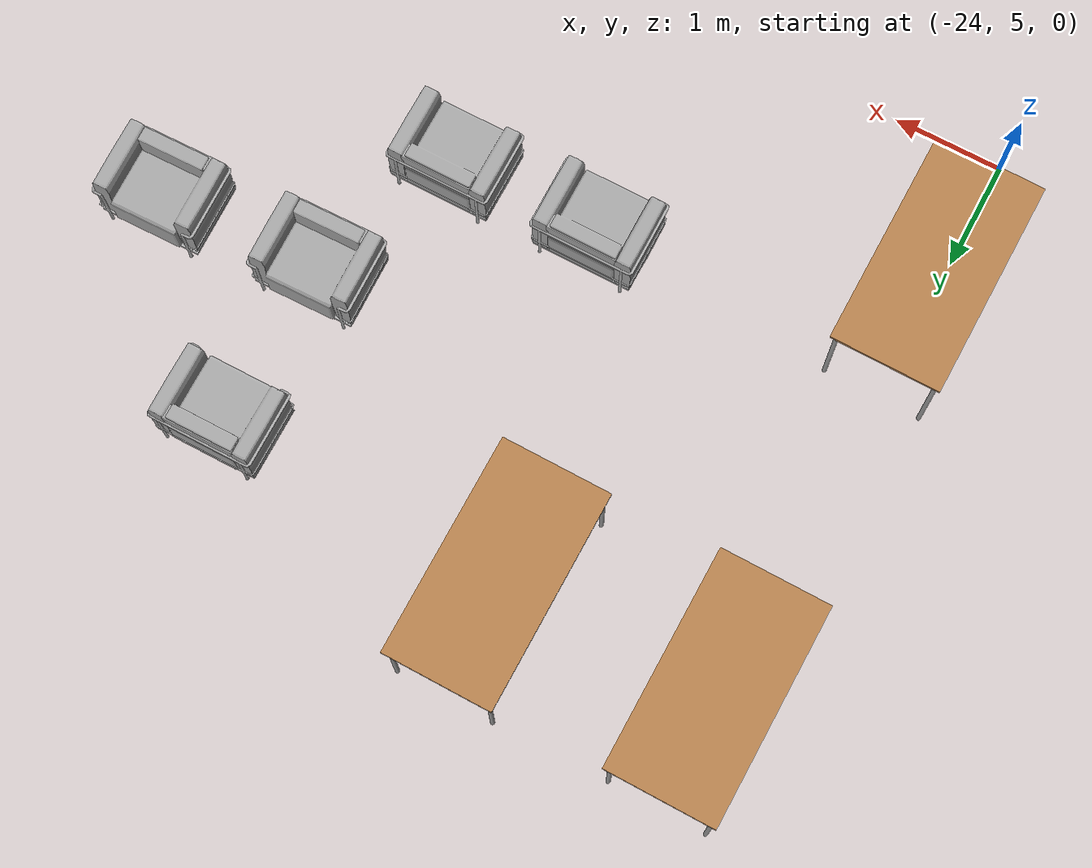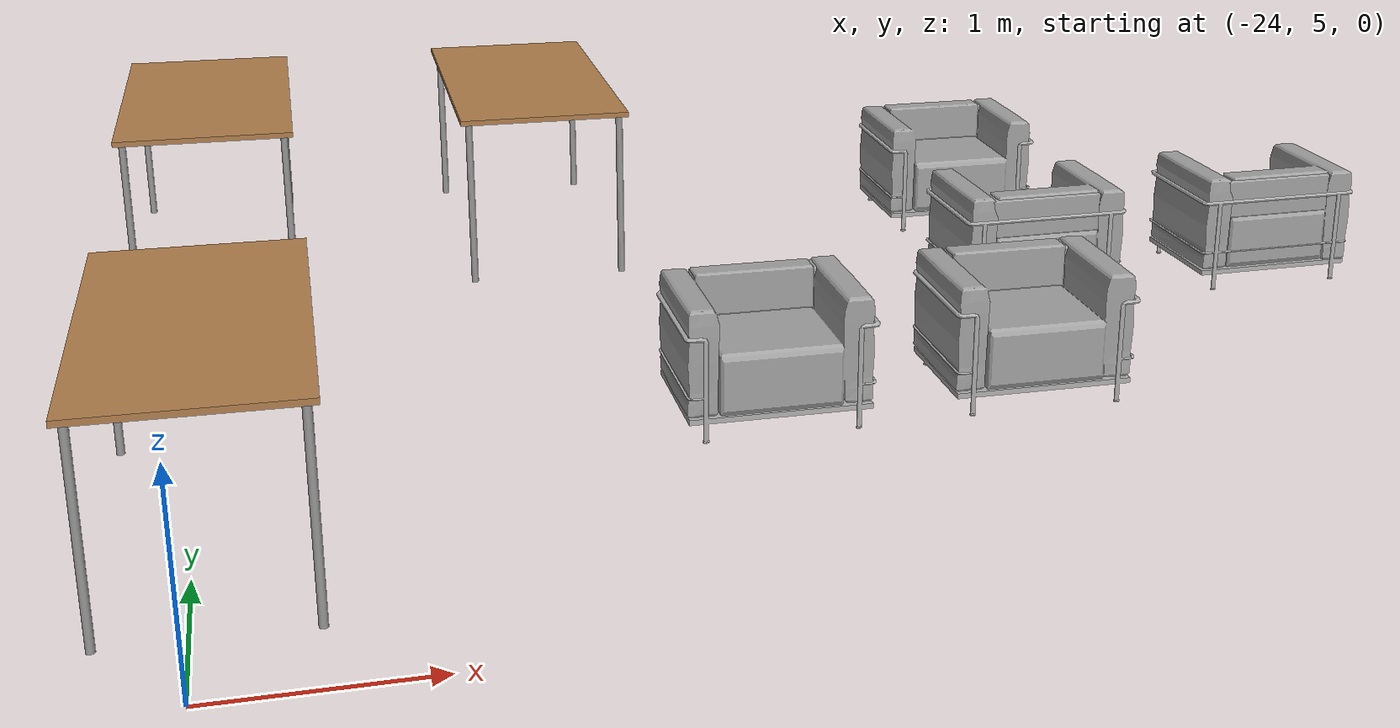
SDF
<sdf version="1.6">
 <model name="bibeg">
  <link name="link_clone_7">
   <pose>-23.902 10.4231 0 0 -0 1.56126</pose>
   <inertial>
    <mass>1</mass>
    <inertia><ixx>1</ixx><ixy>0</ixy><ixz>0</ixz><iyy>1</iyy><iyz>0</iyz><izz>1</izz></inertia>
   </inertial>
   <visual name="front_left_leg">
    <pose>0.95 0.45 0.5 0 -0 0</pose>
    <geometry><cylinder><radius>0.02</radius><length>1</length></cylinder></geometry>
    <material>
     <script><uri>file://media/materials/scripts/gazebo.material</uri><name>Gazebo/Grey</name></script>
     <shader type="vertex"><normal_map>__default__</normal_map></shader>
     <ambient>0.3 0.3 0.3 1</ambient>
     <diffuse>0.7 0.7 0.7 1</diffuse>
     <specular>0.01 0.01 0.01 1</specular>
     <emissive>0 0 0 1</emissive>
    </material>
   </visual>
   <visual name="visual1">
    <pose>0 0 1 0 -0 0</pose>
    <geometry><box><size>2 1 0.03</size></box></geometry>
    <material>
     <script><uri>file://media/materials/scripts/gazebo.material</uri><name>Gazebo/Wood</name></script>
     <shader type="vertex"><normal_map>__default__</normal_map></shader>
     <ambient>1 1 1 1</ambient>
     <diffuse>1 1 1 1</diffuse>
     <specular>0.2 0.2 0.2 1</specular>
     <emissive>0 0 0 1</emissive>
    </material>
   </visual>
   <visual name="front_right_leg">
    <pose>0.95 -0.45 0.5 0 -0 0</pose>
    <geometry><cylinder><radius>0.02</radius><length>1</length></cylinder></geometry>
    <material>
     <script><uri>file://media/materials/scripts/gazebo.material</uri><name>Gazebo/Grey</name></script>
     <shader type="vertex"><normal_map>__default__</normal_map></shader>
     <ambient>0.3 0.3 0.3 1</ambient>
     <diffuse>0.7 0.7 0.7 1</diffuse>
     <specular>0.01 0.01 0.01 1</specular>
     <emissive>0 0 0 1</emissive>
    </material>
   </visual>
   <visual name="back_right_leg">
    <pose>-0.95 -0.45 0.5 0 -0 0</pose>
    <geometry><cylinder><radius>0.02</radius><length>1</length></cylinder></geometry>
    <material>
     <script><uri>file://media/materials/scripts/gazebo.material</uri><name>Gazebo/Grey</name></script>
     <shader type="vertex"><normal_map>__default__</normal_map></shader>
     <ambient>0.3 0.3 0.3 1</ambient>
     <diffuse>0.7 0.7 0.7 1</diffuse>
     <specular>0.01 0.01 0.01 1</specular>
     <emissive>0 0 0 1</emissive>
    </material>
   </visual>
   <visual name="back_left_leg">
    <pose>-0.95 0.45 0.5 0 -0 0</pose>
    <geometry><cylinder><radius>0.02</radius><length>1</length></cylinder></geometry>
    <material>
     <script><uri>file://media/materials/scripts/gazebo.material</uri><name>Gazebo/Grey</name></script>
     <shader type="vertex"><normal_map>__default__</normal_map></shader>
     <ambient>0.3 0.3 0.3 1</ambient>
     <diffuse>0.7 0.7 0.7 1</diffuse>
     <specular>0.01 0.01 0.01 1</specular>
     <emissive>0 0 0 1</emissive>
    </material>
   </visual>
   <collision name="surface">
    <pose>0 0 1 0 -0 0</pose>
    <geometry><box><size>2 1 0.03</size></box></geometry>
    <surface>
     <friction>
      <ode><mu>1</mu><mu2>1</mu2><fdir1>0 0 0</fdir1><slip1>0</slip1><slip2>0</slip2></ode>
      <torsional>
       <coefficient>1</coefficient>
       <patch_radius>0</patch_radius>
       <surface_radius>0</surface_radius>
       <use_patch_radius>1</use_patch_radius>
       <ode><slip>0</slip></ode>
      </torsional>
     </friction>
     <bounce><restitution_coefficient>0</restitution_coefficient><threshold>1e+06</threshold></bounce>
     <contact>
      <collide_without_contact>0</collide_without_contact>
      <collide_without_contact_bitmask>1</collide_without_contact_bitmask>
      <collide_bitmask>1</collide_bitmask>
      <ode>
       <soft_cfm>0</soft_cfm>
       <soft_erp>0.2</soft_erp>
       <kp>1e+13</kp>
       <kd>1</kd>
       <max_vel>0.01</max_vel>
       <min_depth>0</min_depth>
      </ode>
      <bullet>
       <split_impulse>1</split_impulse>
       <split_impulse_penetration_threshold>-0.01</split_impulse_penetration_threshold>
       <soft_cfm>0</soft_cfm>
       <soft_erp>0.2</soft_erp>
       <kp>1e+13</kp>
       <kd>1</kd>
      </bullet>
     </contact>
    </surface>
   </collision>
   <collision name="front_left_leg_0">
    <pose>0.95 0.45 0.5 0 -0 0</pose>
    <geometry><cylinder><radius>0.02</radius><length>1</length></cylinder></geometry>
    <surface>
     <friction>
      <ode><mu>1</mu><mu2>1</mu2><fdir1>0 0 0</fdir1><slip1>0</slip1><slip2>0</slip2></ode>
      <torsional>
       <coefficient>1</coefficient>
       <patch_radius>0</patch_radius>
       <surface_radius>0</surface_radius>
       <use_patch_radius>1</use_patch_radius>
       <ode><slip>0</slip></ode>
      </torsional>
     </friction>
     <bounce><restitution_coefficient>0</restitution_coefficient><threshold>1e+06</threshold></bounce>
     <contact>
      <collide_without_contact>0</collide_without_contact>
      <collide_without_contact_bitmask>1</collide_without_contact_bitmask>
      <collide_bitmask>1</collide_bitmask>
      <ode>
       <soft_cfm>0</soft_cfm>
       <soft_erp>0.2</soft_erp>
       <kp>1e+13</kp>
       <kd>1</kd>
       <max_vel>0.01</max_vel>
       <min_depth>0</min_depth>
      </ode>
      <bullet>
       <split_impulse>1</split_impulse>
       <split_impulse_penetration_threshold>-0.01</split_impulse_penetration_threshold>
       <soft_cfm>0</soft_cfm>
       <soft_erp>0.2</soft_erp>
       <kp>1e+13</kp>
       <kd>1</kd>
      </bullet>
     </contact>
    </surface>
   </collision>
   <collision name="front_right_leg_0">
    <pose>0.95 -0.45 0.5 0 -0 0</pose>
    <geometry><cylinder><radius>0.02</radius><length>1</length></cylinder></geometry>
    <surface>
     <friction>
      <ode><mu>1</mu><mu2>1</mu2><fdir1>0 0 0</fdir1><slip1>0</slip1><slip2>0</slip2></ode>
      <torsional>
       <coefficient>1</coefficient>
       <patch_radius>0</patch_radius>
       <surface_radius>0</surface_radius>
       <use_patch_radius>1</use_patch_radius>
       <ode><slip>0</slip></ode>
      </torsional>
     </friction>
     <bounce><restitution_coefficient>0</restitution_coefficient><threshold>1e+06</threshold></bounce>
     <contact>
      <collide_without_contact>0</collide_without_contact>
      <collide_without_contact_bitmask>1</collide_without_contact_bitmask>
      <collide_bitmask>1</collide_bitmask>
      <ode>
       <soft_cfm>0</soft_cfm>
       <soft_erp>0.2</soft_erp>
       <kp>1e+13</kp>
       <kd>1</kd>
       <max_vel>0.01</max_vel>
       <min_depth>0</min_depth>
      </ode>
      <bullet>
       <split_impulse>1</split_impulse>
       <split_impulse_penetration_threshold>-0.01</split_impulse_penetration_threshold>
       <soft_cfm>0</soft_cfm>
       <soft_erp>0.2</soft_erp>
       <kp>1e+13</kp>
       <kd>1</kd>
      </bullet>
     </contact>
    </surface>
   </collision>
   <collision name="back_right_leg_0">
    <pose>-0.95 -0.45 0.5 0 -0 0</pose>
    <geometry><cylinder><radius>0.02</radius><length>1</length></cylinder></geometry>
    <surface>
     <friction>
      <ode><mu>1</mu><mu2>1</mu2><fdir1>0 0 0</fdir1><slip1>0</slip1><slip2>0</slip2></ode>
      <torsional>
       <coefficient>1</coefficient>
       <patch_radius>0</patch_radius>
       <surface_radius>0</surface_radius>
       <use_patch_radius>1</use_patch_radius>
       <ode><slip>0</slip></ode>
      </torsional>
     </friction>
     <bounce><restitution_coefficient>0</restitution_coefficient><threshold>1e+06</threshold></bounce>
     <contact>
      <collide_without_contact>0</collide_without_contact>
      <collide_without_contact_bitmask>1</collide_without_contact_bitmask>
      <collide_bitmask>1</collide_bitmask>
      <ode>
       <soft_cfm>0</soft_cfm>
       <soft_erp>0.2</soft_erp>
       <kp>1e+13</kp>
       <kd>1</kd>
       <max_vel>0.01</max_vel>
       <min_depth>0</min_depth>
      </ode>
      <bullet>
       <split_impulse>1</split_impulse>
       <split_impulse_penetration_threshold>-0.01</split_impulse_penetration_threshold>
       <soft_cfm>0</soft_cfm>
       <soft_erp>0.2</soft_erp>
       <kp>1e+13</kp>
       <kd>1</kd>
      </bullet>
     </contact>
    </surface>
   </collision>
   <collision name="back_left_leg_0">
    <pose>-0.68 0.38 0.5 0 -0 0</pose>
    <geometry><cylinder><radius>0.02</radius><length>1</length></cylinder></geometry>
    <surface>
     <friction>
      <ode><mu>1</mu><mu2>1</mu2><fdir1>0 0 0</fdir1><slip1>0</slip1><slip2>0</slip2></ode>
      <torsional>
       <coefficient>1</coefficient>
       <patch_radius>0</patch_radius>
       <surface_radius>0</surface_radius>
       <use_patch_radius>1</use_patch_radius>
       <ode><slip>0</slip></ode>
      </torsional>
     </friction>
     <bounce><restitution_coefficient>0</restitution_coefficient><threshold>1e+06</threshold></bounce>
     <contact>
      <collide_without_contact>0</collide_without_contact>
      <collide_without_contact_bitmask>1</collide_without_contact_bitmask>
      <collide_bitmask>1</collide_bitmask>
      <ode>
       <soft_cfm>0</soft_cfm>
       <soft_erp>0.2</soft_erp>
       <kp>1e+13</kp>
       <kd>1</kd>
       <max_vel>0.01</max_vel>
       <min_depth>0</min_depth>
      </ode>
      <bullet>
       <split_impulse>1</split_impulse>
       <split_impulse_penetration_threshold>-0.01</split_impulse_penetration_threshold>
       <soft_cfm>0</soft_cfm>
       <soft_erp>0.2</soft_erp>
       <kp>1e+13</kp>
       <kd>1</kd>
      </bullet>
     </contact>
    </surface>
   </collision>
  </link>
  <link name="link_clone_8">
   <pose>-21.9367 10.4314 0 0 -0 1.56126</pose>
   <inertial>
    <mass>1</mass>
    <inertia><ixx>1</ixx><ixy>0</ixy><ixz>0</ixz><iyy>1</iyy><iyz>0</iyz><izz>1</izz></inertia>
   </inertial>
   <visual name="front_left_leg">
    <pose>0.95 0.45 0.5 0 -0 0</pose>
    <geometry><cylinder><radius>0.02</radius><length>1</length></cylinder></geometry>
    <material>
     <script><uri>file://media/materials/scripts/gazebo.material</uri><name>Gazebo/Grey</name></script>
     <shader type="vertex"><normal_map>__default__</normal_map></shader>
     <ambient>0.3 0.3 0.3 1</ambient>
     <diffuse>0.7 0.7 0.7 1</diffuse>
     <specular>0.01 0.01 0.01 1</specular>
     <emissive>0 0 0 1</emissive>
    </material>
   </visual>
   <visual name="visual1">
    <pose>0 0 1 0 -0 0</pose>
    <geometry><box><size>2 1 0.03</size></box></geometry>
    <material>
     <script><uri>file://media/materials/scripts/gazebo.material</uri><name>Gazebo/Wood</name></script>
     <shader type="vertex"><normal_map>__default__</normal_map></shader>
     <ambient>1 1 1 1</ambient>
     <diffuse>1 1 1 1</diffuse>
     <specular>0.2 0.2 0.2 1</specular>
     <emissive>0 0 0 1</emissive>
    </material>
   </visual>
   <visual name="front_right_leg">
    <pose>0.95 -0.45 0.5 0 -0 0</pose>
    <geometry><cylinder><radius>0.02</radius><length>1</length></cylinder></geometry>
    <material>
     <script><uri>file://media/materials/scripts/gazebo.material</uri><name>Gazebo/Grey</name></script>
     <shader type="vertex"><normal_map>__default__</normal_map></shader>
     <ambient>0.3 0.3 0.3 1</ambient>
     <diffuse>0.7 0.7 0.7 1</diffuse>
     <specular>0.01 0.01 0.01 1</specular>
     <emissive>0 0 0 1</emissive>
    </material>
   </visual>
   <visual name="back_right_leg">
    <pose>-0.95 -0.45 0.5 0 -0 0</pose>
    <geometry><cylinder><radius>0.02</radius><length>1</length></cylinder></geometry>
    <material>
     <script><uri>file://media/materials/scripts/gazebo.material</uri><name>Gazebo/Grey</name></script>
     <shader type="vertex"><normal_map>__default__</normal_map></shader>
     <ambient>0.3 0.3 0.3 1</ambient>
     <diffuse>0.7 0.7 0.7 1</diffuse>
     <specular>0.01 0.01 0.01 1</specular>
     <emissive>0 0 0 1</emissive>
    </material>
   </visual>
   <visual name="back_left_leg">
    <pose>-0.95 0.45 0.5 0 -0 0</pose>
    <geometry><cylinder><radius>0.02</radius><length>1</length></cylinder></geometry>
    <material>
     <script><uri>file://media/materials/scripts/gazebo.material</uri><name>Gazebo/Grey</name></script>
     <shader type="vertex"><normal_map>__default__</normal_map></shader>
     <ambient>0.3 0.3 0.3 1</ambient>
     <diffuse>0.7 0.7 0.7 1</diffuse>
     <specular>0.01 0.01 0.01 1</specular>
     <emissive>0 0 0 1</emissive>
    </material>
   </visual>
   <collision name="surface">
    <pose>0 0 1 0 -0 0</pose>
    <geometry><box><size>2 1 0.03</size></box></geometry>
    <surface>
     <friction>
      <ode><mu>1</mu><mu2>1</mu2><fdir1>0 0 0</fdir1><slip1>0</slip1><slip2>0</slip2></ode>
      <torsional>
       <coefficient>1</coefficient>
       <patch_radius>0</patch_radius>
       <surface_radius>0</surface_radius>
       <use_patch_radius>1</use_patch_radius>
       <ode><slip>0</slip></ode>
      </torsional>
     </friction>
     <bounce><restitution_coefficient>0</restitution_coefficient><threshold>1e+06</threshold></bounce>
     <contact>
      <collide_without_contact>0</collide_without_contact>
      <collide_without_contact_bitmask>1</collide_without_contact_bitmask>
      <collide_bitmask>1</collide_bitmask>
      <ode>
       <soft_cfm>0</soft_cfm>
       <soft_erp>0.2</soft_erp>
       <kp>1e+13</kp>
       <kd>1</kd>
       <max_vel>0.01</max_vel>
       <min_depth>0</min_depth>
      </ode>
      <bullet>
       <split_impulse>1</split_impulse>
       <split_impulse_penetration_threshold>-0.01</split_impulse_penetration_threshold>
       <soft_cfm>0</soft_cfm>
       <soft_erp>0.2</soft_erp>
       <kp>1e+13</kp>
       <kd>1</kd>
      </bullet>
     </contact>
    </surface>
   </collision>
   <collision name="front_left_leg_0">
    <pose>0.95 0.45 0.5 0 -0 0</pose>
    <geometry><cylinder><radius>0.02</radius><length>1</length></cylinder></geometry>
    <surface>
     <friction>
      <ode><mu>1</mu><mu2>1</mu2><fdir1>0 0 0</fdir1><slip1>0</slip1><slip2>0</slip2></ode>
      <torsional>
       <coefficient>1</coefficient>
       <patch_radius>0</patch_radius>
       <surface_radius>0</surface_radius>
       <use_patch_radius>1</use_patch_radius>
       <ode><slip>0</slip></ode>
      </torsional>
     </friction>
     <bounce><restitution_coefficient>0</restitution_coefficient><threshold>1e+06</threshold></bounce>
     <contact>
      <collide_without_contact>0</collide_without_contact>
      <collide_without_contact_bitmask>1</collide_without_contact_bitmask>
      <collide_bitmask>1</collide_bitmask>
      <ode>
       <soft_cfm>0</soft_cfm>
       <soft_erp>0.2</soft_erp>
       <kp>1e+13</kp>
       <kd>1</kd>
       <max_vel>0.01</max_vel>
       <min_depth>0</min_depth>
      </ode>
      <bullet>
       <split_impulse>1</split_impulse>
       <split_impulse_penetration_threshold>-0.01</split_impulse_penetration_threshold>
       <soft_cfm>0</soft_cfm>
       <soft_erp>0.2</soft_erp>
       <kp>1e+13</kp>
       <kd>1</kd>
      </bullet>
     </contact>
    </surface>
   </collision>
   <collision name="front_right_leg_0">
    <pose>0.95 -0.45 0.5 0 -0 0</pose>
    <geometry><cylinder><radius>0.02</radius><length>1</length></cylinder></geometry>
    <surface>
     <friction>
      <ode><mu>1</mu><mu2>1</mu2><fdir1>0 0 0</fdir1><slip1>0</slip1><slip2>0</slip2></ode>
      <torsional>
       <coefficient>1</coefficient>
       <patch_radius>0</patch_radius>
       <surface_radius>0</surface_radius>
       <use_patch_radius>1</use_patch_radius>
       <ode><slip>0</slip></ode>
      </torsional>
     </friction>
     <bounce><restitution_coefficient>0</restitution_coefficient><threshold>1e+06</threshold></bounce>
     <contact>
      <collide_without_contact>0</collide_without_contact>
      <collide_without_contact_bitmask>1</collide_without_contact_bitmask>
      <collide_bitmask>1</collide_bitmask>
      <ode>
       <soft_cfm>0</soft_cfm>
       <soft_erp>0.2</soft_erp>
       <kp>1e+13</kp>
       <kd>1</kd>
       <max_vel>0.01</max_vel>
       <min_depth>0</min_depth>
      </ode>
      <bullet>
       <split_impulse>1</split_impulse>
       <split_impulse_penetration_threshold>-0.01</split_impulse_penetration_threshold>
       <soft_cfm>0</soft_cfm>
       <soft_erp>0.2</soft_erp>
       <kp>1e+13</kp>
       <kd>1</kd>
      </bullet>
     </contact>
    </surface>
   </collision>
   <collision name="back_right_leg_0">
    <pose>-0.95 -0.45 0.5 0 -0 0</pose>
    <geometry><cylinder><radius>0.02</radius><length>1</length></cylinder></geometry>
    <surface>
     <friction>
      <ode><mu>1</mu><mu2>1</mu2><fdir1>0 0 0</fdir1><slip1>0</slip1><slip2>0</slip2></ode>
      <torsional>
       <coefficient>1</coefficient>
       <patch_radius>0</patch_radius>
       <surface_radius>0</surface_radius>
       <use_patch_radius>1</use_patch_radius>
       <ode><slip>0</slip></ode>
      </torsional>
     </friction>
     <bounce><restitution_coefficient>0</restitution_coefficient><threshold>1e+06</threshold></bounce>
     <contact>
      <collide_without_contact>0</collide_without_contact>
      <collide_without_contact_bitmask>1</collide_without_contact_bitmask>
      <collide_bitmask>1</collide_bitmask>
      <ode>
       <soft_cfm>0</soft_cfm>
       <soft_erp>0.2</soft_erp>
       <kp>1e+13</kp>
       <kd>1</kd>
       <max_vel>0.01</max_vel>
       <min_depth>0</min_depth>
      </ode>
      <bullet>
       <split_impulse>1</split_impulse>
       <split_impulse_penetration_threshold>-0.01</split_impulse_penetration_threshold>
       <soft_cfm>0</soft_cfm>
       <soft_erp>0.2</soft_erp>
       <kp>1e+13</kp>
       <kd>1</kd>
      </bullet>
     </contact>
    </surface>
   </collision>
   <collision name="back_left_leg_0">
    <pose>-0.68 0.38 0.5 0 -0 0</pose>
    <geometry><cylinder><radius>0.02</radius><length>1</length></cylinder></geometry>
    <surface>
     <friction>
      <ode><mu>1</mu><mu2>1</mu2><fdir1>0 0 0</fdir1><slip1>0</slip1><slip2>0</slip2></ode>
      <torsional>
       <coefficient>1</coefficient>
       <patch_radius>0</patch_radius>
       <surface_radius>0</surface_radius>
       <use_patch_radius>1</use_patch_radius>
       <ode><slip>0</slip></ode>
      </torsional>
     </friction>
     <bounce><restitution_coefficient>0</restitution_coefficient><threshold>1e+06</threshold></bounce>
     <contact>
      <collide_without_contact>0</collide_without_contact>
      <collide_without_contact_bitmask>1</collide_without_contact_bitmask>
      <collide_bitmask>1</collide_bitmask>
      <ode>
       <soft_cfm>0</soft_cfm>
       <soft_erp>0.2</soft_erp>
       <kp>1e+13</kp>
       <kd>1</kd>
       <max_vel>0.01</max_vel>
       <min_depth>0</min_depth>
      </ode>
      <bullet>
       <split_impulse>1</split_impulse>
       <split_impulse_penetration_threshold>-0.01</split_impulse_penetration_threshold>
       <soft_cfm>0</soft_cfm>
       <soft_erp>0.2</soft_erp>
       <kp>1e+13</kp>
       <kd>1</kd>
      </bullet>
     </contact>
    </surface>
   </collision>
  </link>
  <link name="link_clone_9">
   <pose>-23.9149 6.43454 0 0 -0 1.56126</pose>
   <inertial>
    <mass>1</mass>
    <inertia><ixx>1</ixx><ixy>0</ixy><ixz>0</ixz><iyy>1</iyy><iyz>0</iyz><izz>1</izz></inertia>
   </inertial>
   <visual name="visual1">
    <pose>0 0 1 0 -0 0</pose>
    <geometry><box><size>2 1 0.03</size></box></geometry>
    <material>
     <script><uri>file://media/materials/scripts/gazebo.material</uri><name>Gazebo/Wood</name></script>
     <shader type="vertex"><normal_map>__default__</normal_map></shader>
     <ambient>1 1 1 1</ambient>
     <diffuse>1 1 1 1</diffuse>
     <specular>0.2 0.2 0.2 1</specular>
     <emissive>0 0 0 1</emissive>
    </material>
   </visual>
   <visual name="front_left_leg">
    <pose>0.95 0.45 0.5 0 -0 0</pose>
    <geometry><cylinder><radius>0.02</radius><length>1</length></cylinder></geometry>
    <material>
     <script><uri>file://media/materials/scripts/gazebo.material</uri><name>Gazebo/Grey</name></script>
     <shader type="vertex"><normal_map>__default__</normal_map></shader>
     <ambient>0.3 0.3 0.3 1</ambient>
     <diffuse>0.7 0.7 0.7 1</diffuse>
     <specular>0.01 0.01 0.01 1</specular>
     <emissive>0 0 0 1</emissive>
    </material>
   </visual>
   <visual name="front_right_leg">
    <pose>0.95 -0.45 0.5 0 -0 0</pose>
    <geometry><cylinder><radius>0.02</radius><length>1</length></cylinder></geometry>
    <material>
     <script><uri>file://media/materials/scripts/gazebo.material</uri><name>Gazebo/Grey</name></script>
     <shader type="vertex"><normal_map>__default__</normal_map></shader>
     <ambient>0.3 0.3 0.3 1</ambient>
     <diffuse>0.7 0.7 0.7 1</diffuse>
     <specular>0.01 0.01 0.01 1</specular>
     <emissive>0 0 0 1</emissive>
    </material>
   </visual>
   <visual name="back_right_leg">
    <pose>-0.95 -0.45 0.5 0 -0 0</pose>
    <geometry><cylinder><radius>0.02</radius><length>1</length></cylinder></geometry>
    <material>
     <script><uri>file://media/materials/scripts/gazebo.material</uri><name>Gazebo/Grey</name></script>
     <shader type="vertex"><normal_map>__default__</normal_map></shader>
     <ambient>0.3 0.3 0.3 1</ambient>
     <diffuse>0.7 0.7 0.7 1</diffuse>
     <specular>0.01 0.01 0.01 1</specular>
     <emissive>0 0 0 1</emissive>
    </material>
   </visual>
   <visual name="back_left_leg">
    <pose>-0.95 0.45 0.5 0 -0 0</pose>
    <geometry><cylinder><radius>0.02</radius><length>1</length></cylinder></geometry>
    <material>
     <script><uri>file://media/materials/scripts/gazebo.material</uri><name>Gazebo/Grey</name></script>
     <shader type="vertex"><normal_map>__default__</normal_map></shader>
     <ambient>0.3 0.3 0.3 1</ambient>
     <diffuse>0.7 0.7 0.7 1</diffuse>
     <specular>0.01 0.01 0.01 1</specular>
     <emissive>0 0 0 1</emissive>
    </material>
   </visual>
   <collision name="surface">
    <pose>0 0 1 0 -0 0</pose>
    <geometry><box><size>2 1 0.03</size></box></geometry>
    <surface>
     <friction>
      <ode><mu>1</mu><mu2>1</mu2><fdir1>0 0 0</fdir1><slip1>0</slip1><slip2>0</slip2></ode>
      <torsional>
       <coefficient>1</coefficient>
       <patch_radius>0</patch_radius>
       <surface_radius>0</surface_radius>
       <use_patch_radius>1</use_patch_radius>
       <ode><slip>0</slip></ode>
      </torsional>
     </friction>
     <bounce><restitution_coefficient>0</restitution_coefficient><threshold>1e+06</threshold></bounce>
     <contact>
      <collide_without_contact>0</collide_without_contact>
      <collide_without_contact_bitmask>1</collide_without_contact_bitmask>
      <collide_bitmask>1</collide_bitmask>
      <ode>
       <soft_cfm>0</soft_cfm>
       <soft_erp>0.2</soft_erp>
       <kp>1e+13</kp>
       <kd>1</kd>
       <max_vel>0.01</max_vel>
       <min_depth>0</min_depth>
      </ode>
      <bullet>
       <split_impulse>1</split_impulse>
       <split_impulse_penetration_threshold>-0.01</split_impulse_penetration_threshold>
       <soft_cfm>0</soft_cfm>
       <soft_erp>0.2</soft_erp>
       <kp>1e+13</kp>
       <kd>1</kd>
      </bullet>
     </contact>
    </surface>
   </collision>
   <collision name="front_left_leg_0">
    <pose>0.95 0.45 0.5 0 -0 0</pose>
    <geometry><cylinder><radius>0.02</radius><length>1</length></cylinder></geometry>
    <surface>
     <friction>
      <ode><mu>1</mu><mu2>1</mu2><fdir1>0 0 0</fdir1><slip1>0</slip1><slip2>0</slip2></ode>
      <torsional>
       <coefficient>1</coefficient>
       <patch_radius>0</patch_radius>
       <surface_radius>0</surface_radius>
       <use_patch_radius>1</use_patch_radius>
       <ode><slip>0</slip></ode>
      </torsional>
     </friction>
     <bounce><restitution_coefficient>0</restitution_coefficient><threshold>1e+06</threshold></bounce>
     <contact>
      <collide_without_contact>0</collide_without_contact>
      <collide_without_contact_bitmask>1</collide_without_contact_bitmask>
      <collide_bitmask>1</collide_bitmask>
      <ode>
       <soft_cfm>0</soft_cfm>
       <soft_erp>0.2</soft_erp>
       <kp>1e+13</kp>
       <kd>1</kd>
       <max_vel>0.01</max_vel>
       <min_depth>0</min_depth>
      </ode>
      <bullet>
       <split_impulse>1</split_impulse>
       <split_impulse_penetration_threshold>-0.01</split_impulse_penetration_threshold>
       <soft_cfm>0</soft_cfm>
       <soft_erp>0.2</soft_erp>
       <kp>1e+13</kp>
       <kd>1</kd>
      </bullet>
     </contact>
    </surface>
   </collision>
   <collision name="front_right_leg_0">
    <pose>0.95 -0.45 0.5 0 -0 0</pose>
    <geometry><cylinder><radius>0.02</radius><length>1</length></cylinder></geometry>
    <surface>
     <friction>
      <ode><mu>1</mu><mu2>1</mu2><fdir1>0 0 0</fdir1><slip1>0</slip1><slip2>0</slip2></ode>
      <torsional>
       <coefficient>1</coefficient>
       <patch_radius>0</patch_radius>
       <surface_radius>0</surface_radius>
       <use_patch_radius>1</use_patch_radius>
       <ode><slip>0</slip></ode>
      </torsional>
     </friction>
     <bounce><restitution_coefficient>0</restitution_coefficient><threshold>1e+06</threshold></bounce>
     <contact>
      <collide_without_contact>0</collide_without_contact>
      <collide_without_contact_bitmask>1</collide_without_contact_bitmask>
      <collide_bitmask>1</collide_bitmask>
      <ode>
       <soft_cfm>0</soft_cfm>
       <soft_erp>0.2</soft_erp>
       <kp>1e+13</kp>
       <kd>1</kd>
       <max_vel>0.01</max_vel>
       <min_depth>0</min_depth>
      </ode>
      <bullet>
       <split_impulse>1</split_impulse>
       <split_impulse_penetration_threshold>-0.01</split_impulse_penetration_threshold>
       <soft_cfm>0</soft_cfm>
       <soft_erp>0.2</soft_erp>
       <kp>1e+13</kp>
       <kd>1</kd>
      </bullet>
     </contact>
    </surface>
   </collision>
   <collision name="back_right_leg_0">
    <pose>-0.95 -0.45 0.5 0 -0 0</pose>
    <geometry><cylinder><radius>0.02</radius><length>1</length></cylinder></geometry>
    <surface>
     <friction>
      <ode><mu>1</mu><mu2>1</mu2><fdir1>0 0 0</fdir1><slip1>0</slip1><slip2>0</slip2></ode>
      <torsional>
       <coefficient>1</coefficient>
       <patch_radius>0</patch_radius>
       <surface_radius>0</surface_radius>
       <use_patch_radius>1</use_patch_radius>
       <ode><slip>0</slip></ode>
      </torsional>
     </friction>
     <bounce><restitution_coefficient>0</restitution_coefficient><threshold>1e+06</threshold></bounce>
     <contact>
      <collide_without_contact>0</collide_without_contact>
      <collide_without_contact_bitmask>1</collide_without_contact_bitmask>
      <collide_bitmask>1</collide_bitmask>
      <ode>
       <soft_cfm>0</soft_cfm>
       <soft_erp>0.2</soft_erp>
       <kp>1e+13</kp>
       <kd>1</kd>
       <max_vel>0.01</max_vel>
       <min_depth>0</min_depth>
      </ode>
      <bullet>
       <split_impulse>1</split_impulse>
       <split_impulse_penetration_threshold>-0.01</split_impulse_penetration_threshold>
       <soft_cfm>0</soft_cfm>
       <soft_erp>0.2</soft_erp>
       <kp>1e+13</kp>
       <kd>1</kd>
      </bullet>
     </contact>
    </surface>
   </collision>
   <collision name="back_left_leg_0">
    <pose>-0.68 0.38 0.5 0 -0 0</pose>
    <geometry><cylinder><radius>0.02</radius><length>1</length></cylinder></geometry>
    <surface>
     <friction>
      <ode><mu>1</mu><mu2>1</mu2><fdir1>0 0 0</fdir1><slip1>0</slip1><slip2>0</slip2></ode>
      <torsional>
       <coefficient>1</coefficient>
       <patch_radius>0</patch_radius>
       <surface_radius>0</surface_radius>
       <use_patch_radius>1</use_patch_radius>
       <ode><slip>0</slip></ode>
      </torsional>
     </friction>
     <bounce><restitution_coefficient>0</restitution_coefficient><threshold>1e+06</threshold></bounce>
     <contact>
      <collide_without_contact>0</collide_without_contact>
      <collide_without_contact_bitmask>1</collide_without_contact_bitmask>
      <collide_bitmask>1</collide_bitmask>
      <ode>
       <soft_cfm>0</soft_cfm>
       <soft_erp>0.2</soft_erp>
       <kp>1e+13</kp>
       <kd>1</kd>
       <max_vel>0.01</max_vel>
       <min_depth>0</min_depth>
      </ode>
      <bullet>
       <split_impulse>1</split_impulse>
       <split_impulse_penetration_threshold>-0.01</split_impulse_penetration_threshold>
       <soft_cfm>0</soft_cfm>
       <soft_erp>0.2</soft_erp>
       <kp>1e+13</kp>
       <kd>1</kd>
      </bullet>
     </contact>
    </surface>
   </collision>
  </link>
  <model name="chair_set_1">
   <link name="link_16">
    <pose>0.07217 0.114259 -0.032065 0 -0 1.57</pose>
    <visual name="visual">
     <geometry><mesh><uri>model://chair_set_1/meshes/chair_frame.dae</uri><scale>1 1 1</scale></mesh></geometry>
     <material>
      <lighting>1</lighting>
      <ambient>0.3 0.3 0.3 1</ambient>
      <diffuse>0.7 0.7 0.7 1</diffuse>
      <specular>0.01 0.01 0.01 1</specular>
      <emissive>0 0 0 1</emissive>
      <shader type="vertex"><normal_map>__default__</normal_map></shader>
     </material>
    </visual>
    <collision name="collision">
     <geometry><mesh><uri>model://chair_set_1/meshes/chair_frame.dae</uri><scale>1 1 1</scale></mesh></geometry>
    </collision>
   </link>
   <link name="link_17">
    <pose>0.069192 0.1237 -0.032065 0 -0 1.57</pose>
    <visual name="visual">
     <geometry><mesh><uri>model://chair_set_1/meshes/chair_cushions.dae</uri><scale>1 1 1</scale></mesh></geometry>
     <material>
      <script>
       <uri>model://chair_set_1/materials/scripts</uri>
       <uri>model://chair_set_1/materials/textures</uri>
       <name>chair_set_1</name>
      </script>
     </material>
    </visual>
    <collision name="collision">
     <geometry><mesh><uri>model://chair_set_1/meshes/chair_cushions.dae</uri><scale>1 1 1</scale></mesh></geometry>
    </collision>
   </link>
   <link name="link_18">
    <pose>0.606963 -0.367766 -0.032065 0 -0 0</pose>
    <visual name="visual">
     <geometry>
      <mesh><uri>model://chair_set_1/meshes/sofa_cushions_back.dae</uri><scale>1 1 1</scale></mesh>
     </geometry>
     <material>
      <script>
       <uri>model://chair_set_1/materials/scripts</uri>
       <uri>model://chair_set_1/materials/textures</uri>
       <name>chair_set_1</name>
      </script>
     </material>
    </visual>
    <collision name="collision">
     <geometry>
      <mesh><uri>model://chair_set_1/meshes/sofa_cushions_back.dae</uri><scale>1 1 1</scale></mesh>
     </geometry>
    </collision>
   </link>
   <static>1</static>
   <pose>-19.1557 10.1824 0 0 -0 0</pose>
  </model>
  <model name="chair_set_1_1">
   <link name="link_16">
    <pose>0.07217 0.114259 -0.032065 0 -0 1.57</pose>
    <visual name="visual">
     <geometry><mesh><uri>model://chair_set_1/meshes/chair_frame.dae</uri><scale>1 1 1</scale></mesh></geometry>
     <material>
      <lighting>1</lighting>
      <ambient>0.3 0.3 0.3 1</ambient>
      <diffuse>0.7 0.7 0.7 1</diffuse>
      <specular>0.01 0.01 0.01 1</specular>
      <emissive>0 0 0 1</emissive>
      <shader type="vertex"><normal_map>__default__</normal_map></shader>
     </material>
    </visual>
    <collision name="collision">
     <geometry><mesh><uri>model://chair_set_1/meshes/chair_frame.dae</uri><scale>1 1 1</scale></mesh></geometry>
    </collision>
   </link>
   <link name="link_17">
    <pose>0.069192 0.1237 -0.032065 0 -0 1.57</pose>
    <visual name="visual">
     <geometry><mesh><uri>model://chair_set_1/meshes/chair_cushions.dae</uri><scale>1 1 1</scale></mesh></geometry>
     <material>
      <script>
       <uri>model://chair_set_1/materials/scripts</uri>
       <uri>model://chair_set_1/materials/textures</uri>
       <name>chair_set_1</name>
      </script>
     </material>
    </visual>
    <collision name="collision">
     <geometry><mesh><uri>model://chair_set_1/meshes/chair_cushions.dae</uri><scale>1 1 1</scale></mesh></geometry>
    </collision>
   </link>
   <link name="link_18">
    <pose>0.606963 -0.367766 -0.032065 0 -0 0</pose>
    <visual name="visual">
     <geometry>
      <mesh><uri>model://chair_set_1/meshes/sofa_cushions_back.dae</uri><scale>1 1 1</scale></mesh>
     </geometry>
     <material>
      <script>
       <uri>model://chair_set_1/materials/scripts</uri>
       <uri>model://chair_set_1/materials/textures</uri>
       <name>chair_set_1</name>
      </script>
     </material>
    </visual>
    <collision name="collision">
     <geometry>
      <mesh><uri>model://chair_set_1/meshes/sofa_cushions_back.dae</uri><scale>1 1 1</scale></mesh>
     </geometry>
    </collision>
   </link>
   <static>1</static>
   <pose>-21.1749 7.22132 0 0 -0 0</pose>
  </model>
  <model name="chair_set_1_2">
   <link name="link_16">
    <pose>0.07217 0.114259 -0.032065 0 -0 1.57</pose>
    <visual name="visual">
     <geometry><mesh><uri>model://chair_set_1/meshes/chair_frame.dae</uri><scale>1 1 1</scale></mesh></geometry>
     <material>
      <lighting>1</lighting>
      <ambient>0.3 0.3 0.3 1</ambient>
      <diffuse>0.7 0.7 0.7 1</diffuse>
      <specular>0.01 0.01 0.01 1</specular>
      <emissive>0 0 0 1</emissive>
      <shader type="vertex"><normal_map>__default__</normal_map></shader>
     </material>
    </visual>
    <collision name="collision">
     <geometry><mesh><uri>model://chair_set_1/meshes/chair_frame.dae</uri><scale>1 1 1</scale></mesh></geometry>
    </collision>
   </link>
   <link name="link_17">
    <pose>0.069192 0.1237 -0.032065 0 -0 1.57</pose>
    <visual name="visual">
     <geometry><mesh><uri>model://chair_set_1/meshes/chair_cushions.dae</uri><scale>1 1 1</scale></mesh></geometry>
     <material>
      <script>
       <uri>model://chair_set_1/materials/scripts</uri>
       <uri>model://chair_set_1/materials/textures</uri>
       <name>chair_set_1</name>
      </script>
     </material>
    </visual>
    <collision name="collision">
     <geometry><mesh><uri>model://chair_set_1/meshes/chair_cushions.dae</uri><scale>1 1 1</scale></mesh></geometry>
    </collision>
   </link>
   <link name="link_18">
    <pose>0.606963 -0.367766 -0.032065 0 -0 0</pose>
    <visual name="visual">
     <geometry>
      <mesh><uri>model://chair_set_1/meshes/sofa_cushions_back.dae</uri><scale>1 1 1</scale></mesh>
     </geometry>
     <material>
      <script>
       <uri>model://chair_set_1/materials/scripts</uri>
       <uri>model://chair_set_1/materials/textures</uri>
       <name>chair_set_1</name>
      </script>
     </material>
    </visual>
    <collision name="collision">
     <geometry>
      <mesh><uri>model://chair_set_1/meshes/sofa_cushions_back.dae</uri><scale>1 1 1</scale></mesh>
     </geometry>
    </collision>
   </link>
   <static>1</static>
   <pose>-19.784 7.23452 0 0 -0 0</pose>
  </model>
  <model name="chair_set_1_3_clone">
   <link name="link_16">
    <pose>0.07217 0.114259 -0.032065 0 -0 1.57</pose>
    <visual name="visual">
     <geometry><mesh><uri>model://chair_set_1/meshes/chair_frame.dae</uri><scale>1 1 1</scale></mesh></geometry>
     <material>
      <lighting>1</lighting>
      <ambient>0.3 0.3 0.3 1</ambient>
      <diffuse>0.7 0.7 0.7 1</diffuse>
      <specular>0.01 0.01 0.01 1</specular>
      <emissive>0 0 0 1</emissive>
      <shader type="vertex"><normal_map>__default__</normal_map></shader>
     </material>
    </visual>
    <collision name="collision">
     <geometry><mesh><uri>model://chair_set_1/meshes/chair_frame.dae</uri><scale>1 1 1</scale></mesh></geometry>
    </collision>
   </link>
   <link name="link_17">
    <pose>0.069192 0.1237 -0.032065 0 -0 1.57</pose>
    <visual name="visual">
     <geometry><mesh><uri>model://chair_set_1/meshes/chair_cushions.dae</uri><scale>1 1 1</scale></mesh></geometry>
     <material>
      <script>
       <uri>model://chair_set_1/materials/scripts</uri>
       <uri>model://chair_set_1/materials/textures</uri>
       <name>chair_set_1</name>
      </script>
     </material>
    </visual>
    <collision name="collision">
     <geometry><mesh><uri>model://chair_set_1/meshes/chair_cushions.dae</uri><scale>1 1 1</scale></mesh></geometry>
    </collision>
   </link>
   <link name="link_18">
    <pose>0.606963 -0.367766 -0.032065 0 -0 0</pose>
    <visual name="visual">
     <geometry>
      <mesh><uri>model://chair_set_1/meshes/sofa_cushions_back.dae</uri><scale>1 1 1</scale></mesh>
     </geometry>
     <material>
      <script>
       <uri>model://chair_set_1/materials/scripts</uri>
       <uri>model://chair_set_1/materials/textures</uri>
       <name>chair_set_1</name>
      </script>
     </material>
    </visual>
    <collision name="collision">
     <geometry>
      <mesh><uri>model://chair_set_1/meshes/sofa_cushions_back.dae</uri><scale>1 1 1</scale></mesh>
     </geometry>
    </collision>
   </link>
   <static>1</static>
   <pose>-19.2224 8.62796 0 0 0 -3.12094</pose>
  </model>
  <model name="chair_set_1_3_clone_0">
   <link name="link_16">
    <pose>0.07217 0.114259 -0.032065 0 -0 1.57</pose>
    <visual name="visual">
     <geometry><mesh><uri>model://chair_set_1/meshes/chair_frame.dae</uri><scale>1 1 1</scale></mesh></geometry>
     <material>
      <lighting>1</lighting>
      <ambient>0.3 0.3 0.3 1</ambient>
      <diffuse>0.7 0.7 0.7 1</diffuse>
      <specular>0.01 0.01 0.01 1</specular>
      <emissive>0 0 0 1</emissive>
      <shader type="vertex"><normal_map>__default__</normal_map></shader>
     </material>
    </visual>
    <collision name="collision">
     <geometry><mesh><uri>model://chair_set_1/meshes/chair_frame.dae</uri><scale>1 1 1</scale></mesh></geometry>
    </collision>
   </link>
   <link name="link_17">
    <pose>0.069192 0.1237 -0.032065 0 -0 1.57</pose>
    <visual name="visual">
     <geometry><mesh><uri>model://chair_set_1/meshes/chair_cushions.dae</uri><scale>1 1 1</scale></mesh></geometry>
     <material>
      <script>
       <uri>model://chair_set_1/materials/scripts</uri>
       <uri>model://chair_set_1/materials/textures</uri>
       <name>chair_set_1</name>
      </script>
     </material>
    </visual>
    <collision name="collision">
     <geometry><mesh><uri>model://chair_set_1/meshes/chair_cushions.dae</uri><scale>1 1 1</scale></mesh></geometry>
    </collision>
   </link>
   <link name="link_18">
    <pose>0.606963 -0.367766 -0.032065 0 -0 0</pose>
    <visual name="visual">
     <geometry>
      <mesh><uri>model://chair_set_1/meshes/sofa_cushions_back.dae</uri><scale>1 1 1</scale></mesh>
     </geometry>
     <material>
      <script>
       <uri>model://chair_set_1/materials/scripts</uri>
       <uri>model://chair_set_1/materials/textures</uri>
       <name>chair_set_1</name>
      </script>
     </material>
    </visual>
    <collision name="collision">
     <geometry>
      <mesh><uri>model://chair_set_1/meshes/sofa_cushions_back.dae</uri><scale>1 1 1</scale></mesh>
     </geometry>
    </collision>
   </link>
   <static>1</static>
   <pose>-17.7274 8.67469 0 0 0 -3.12094</pose>
  </model>
  <static>1</static>
 </model>
</sdf>
